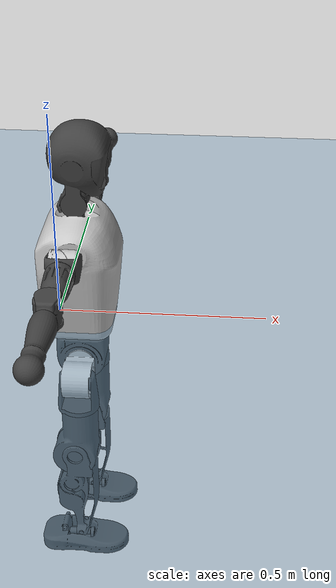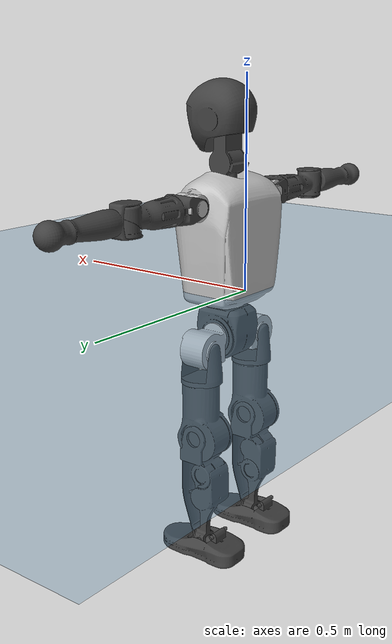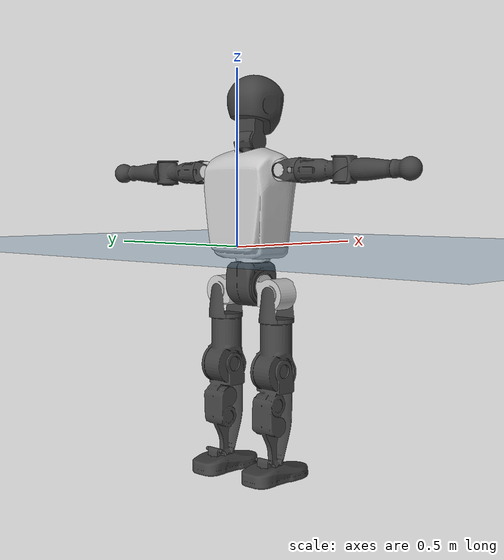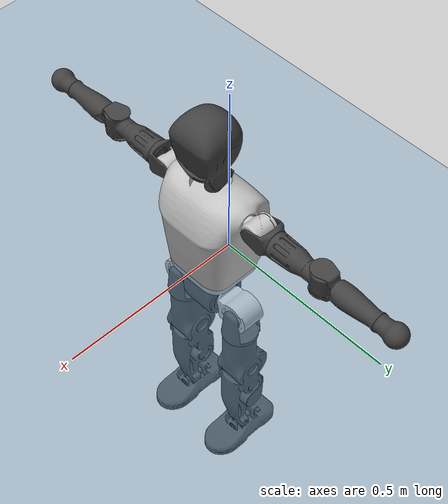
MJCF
<mujoco model="T1">
  <compiler angle="radian" assetdir="assets" balanceinertia="true" inertiafromgeom="false"/>

  <option timestep="0.005" density="1.2" viscosity="2e-05"/>

  <size nkey="1"/>

  <visual>
    <quality shadowsize="8192"/>
    <map shadowclip="0.5"/>
  </visual>

  <default>
    <default class="/">
      <joint armature="0.01" damping="0.01" frictionloss="0.1"/>
      <geom contype="0" conaffinity="0" group="1" solref="-1000 -80"/>
      <site size="0.01 0.005 0.005" group="5"/>
      <general forcelimited="true" biastype="affine" gainprm="25" biasprm="0 -25 -0.6"/>
      <default class="t1">
        <geom rgba="0.25 0.25 0.25 1"/>
        <default class="visual">
          <geom type="mesh" group="2"/>
        </default>
        <default class="collision">
          <geom group="3"/>
        </default>
        <default class="foot">
          <geom size="0.1115 0.05 0.015" type="box" condim="6" group="4" priority="1" solimp="0.015 1 0.015"/>
        </default>
        <default class="reward_collision_sphere">
          <geom group="5" rgba="1 0 0 1"/>
        </default>
      </default>
    </default>
  </default>

  <asset>
    <texture type="skybox" colorspace="auto" name="//unnamed_texture_0" builtin="gradient" rgb1="0.95 0.95 0.95" rgb2="0.95 0.95 0.95" width="100" height="600"/>
    <texture type="2d" colorspace="auto" name="texplane" builtin="checker" rgb1="0.345 0.575 0.748" rgb2="0.345 0.575 0.748" markrgb="1 1 1" width="512" height="512"/>
    <material name="MatPlane" class="/" texture="texplane" texuniform="true" texrepeat="2 2" specular="0.9"/>
    <mesh name="Trunk" class="/" file="Trunk.stl"/>
    <mesh name="H1" class="/" file="H1.stl"/>
    <mesh name="H2" class="/" file="H2.stl"/>
    <mesh name="AL1" class="/" file="AL1.stl"/>
    <mesh name="AL2" class="/" file="AL2.stl"/>
    <mesh name="AL3" class="/" file="AL3.stl"/>
    <mesh name="left_hand_link" class="/" file="left_hand_link.stl"/>
    <mesh name="AR1" class="/" file="AR1.stl"/>
    <mesh name="AR2" class="/" file="AR2.stl"/>
    <mesh name="AR3" class="/" file="AR3.stl"/>
    <mesh name="right_hand_link" class="/" file="right_hand_link.stl"/>
    <mesh name="Waist" class="/" file="Waist.stl"/>
    <mesh name="Hip_Pitch_Left" class="/" file="Hip_Pitch_Left.stl"/>
    <mesh name="Hip_Roll_Left" class="/" file="Hip_Roll_Left.stl"/>
    <mesh name="Hip_Yaw_Left" class="/" file="Hip_Yaw_Left.stl"/>
    <mesh name="Shank_Left" class="/" file="Shank_Left.stl"/>
    <mesh name="Ankle_Cross_Left" class="/" file="Ankle_Cross_Left.stl"/>
    <mesh name="left_foot_link" class="/" file="left_foot_link.stl"/>
    <mesh name="Hip_Pitch_Right" class="/" file="Hip_Pitch_Right.stl"/>
    <mesh name="Hip_Roll_Right" class="/" file="Hip_Roll_Right.stl"/>
    <mesh name="Hip_Yaw_Right" class="/" file="Hip_Yaw_Right.stl"/>
    <mesh name="Shank_Right" class="/" file="Shank_Right.stl"/>
    <mesh name="Ankle_Cross_Right" class="/" file="Ankle_Cross_Right.stl"/>
    <mesh name="right_foot_link" class="/" file="right_foot_link.stl"/>
  </asset>

  <worldbody>
    <geom name="floor" class="/" size="100 100 0.125" type="plane" group="0" material="MatPlane"/>
    <light name="toplight_shadow" class="/" pos="0 0 5" dir="0.0990148 0.0990148 -0.990148" type="directional" ambient="0.04 0.04 0.04" diffuse="0.55 0.55 0.55" specular="0.12 0.12 0.12"/>
    <light name="toplight_fill" class="/" pos="0 0 5" dir="0.0990148 0.0990148 -0.990148" type="directional" castshadow="false" ambient="0.04 0.04 0.04" diffuse="0.3 0.3 0.3" specular="0.08 0.08 0.08"/>
    <body name="trunk" childclass="t1" pos="0.000491303 -6.95263e-05 0.000629106" quat="1 0.000456871 -0.000152163 0.000102756">
      <inertial pos="0.0447137 -0.00197378 0.101485" quat="0.99996 -1.15281e-05 -0.00898122 1.22953e-05" mass="9.01453" diaginertia="0.0350254 0.0585172 0.0481565"/>
      <joint name="//unnamed_joint_0" type="free" armature="0" damping="0" frictionloss="0"/>
      <geom name="//unnamed_geom_1" class="visual" rgba="0.76 0.76 0.76 1" mesh="Trunk"/>
      <geom name="//unnamed_geom_2" class="collision" size="0.0685448 0.0913931 0.13709" pos="0.0493849 0 0.116839" type="box"/>
      <geom name="//unnamed_geom_3" class="reward_collision_sphere" size="0.105102" pos="0.0493849 0 0.0973654"/>
      <geom name="//unnamed_geom_4" class="reward_collision_sphere" size="0.013709" pos="0.0493849 0.0803299 0"/>
      <geom name="//unnamed_geom_5" class="reward_collision_sphere" size="0.013709" pos="0.0493849 -0.0803299 0"/>
      <geom name="//unnamed_geom_6" class="reward_collision_sphere" size="0.013709" pos="0.0493849 0.101121 0.175258"/>
      <geom name="//unnamed_geom_7" class="reward_collision_sphere" size="0.013709" pos="0.0493849 -0.101121 0.175258"/>
      <site name="imu" pos="-0.0116042 0.0120123 -0.0113341" size="0.00913931"/>
      <camera name="track" pos="0 -1.89011 0" quat="0.707107 0.707107 0 0" mode="trackcom"/>
      <camera name="ego_camera" pos="0.100416 0 0.408935" quat="-0.5 -0.5 0.5 0.5"/>
      <body name="H1" pos="0.0509002 0.00047357 0.237235" quat="0.999999 0.000223785 8.35657e-06 -0.00113517">
        <inertial pos="-0.00121824 -0.000887136 0.0548841" quat="0.763837 -0.0127521 0.00156166 0.645281" mass="0.357623" diaginertia="9.18784e-05 0.000170205 0.000134218"/>
        <joint name="AAHead_yaw" pos="0 0 0" axis="0.000389921 0.000144755 1" range="-1.57674 1.56976" armature="0.0103034" damping="0" frictionloss="0.089896"/>
        <geom name="//unnamed_geom_8" class="visual" mesh="H1"/>
        <body name="H2" pos="0.00199317 -0.000524343 0.059985" quat="1 -3.20733e-05 -0.000115705 0.00018282">
          <inertial pos="0.00567533 0.00130208 0.0955201" quat="0.988465 0.106077 -0.0733224 -0.0794246" mass="0.486319" diaginertia="0.000768517 0.00144083 0.00150348"/>
          <joint name="Head_pitch" pos="0 0 0" axis="0.00176921 -0.999988 -0.00461739" range="-1.21365 0.347282" armature="0.00864192" damping="0.00467706" frictionloss="0.0904581"/>
          <geom name="//unnamed_geom_9" class="visual" mesh="H2"/>
          <geom name="//unnamed_geom_10" class="collision" size="0.0731145" pos="0.00823082 0 0.107102"/>
          <geom name="//unnamed_geom_11" class="reward_collision_sphere" size="0.0822538" pos="0.0164616 0 0.0973654"/>
        </body>
      </body>
      <body name="AL1" pos="0.0467858 0.100196 0.212253" quat="0.999999 0.000360354 0.000972479 -0.000246833">
        <inertial pos="-0.000650648 0.0438416 -0.000228053" quat="0.503716 0.496273 -0.503887 0.496066" mass="0.407163" diaginertia="0.000517567 0.000986396 0.000258994"/>
        <joint name="Left_Shoulder_Pitch" pos="0 0 0" axis="0.00199873 0.999996 0.00182375" range="-3.32443 1.21077" armature="0.00961875" damping="0.0113503" frictionloss="0.0897128"/>
        <geom name="//unnamed_geom_12" class="visual" rgba="0.76 0.76 0.76 1" mesh="AL1"/>
        <body name="AL2" pos="0.000818246 0.044272 -1.35753e-05" quat="1 7.21379e-05 7.62847e-05 -9.99848e-05">
          <inertial pos="0.00329209 0.0366228 0.00163916" quat="0.4866 0.512792 -0.487101 0.512833" mass="0.126119" diaginertia="0.000153008 0.000255723 0.000155252"/>
          <joint name="Left_Shoulder_Roll" pos="0 0 0" axis="-1 0.000370461 4.70885e-05" range="-1.52672 1.78569" armature="0.00817763" damping="0.00287979" frictionloss="0.0907229"/>
          <geom name="//unnamed_geom_13" class="visual" mesh="AL2"/>
          <body name="AL3" pos="0.00192805 0.0572043 -0.00114034" quat="1 4.18007e-05 -8.87885e-06 -2.26385e-05">
            <inertial pos="0.000316908 0.0805707 -6.92122e-05" quat="0.706774 0.707436 0.00152536 -0.00163012" mass="0.78828" diaginertia="0.00486985 0.0098306 0.000533445"/>
            <joint name="Left_Elbow_Pitch" pos="0 0 0" axis="-0.00500505 -0.999923 0.0113259" range="-2.22633 2.29787" armature="0.00797306" damping="0.00302233" frictionloss="0.0872193"/>
            <geom name="//unnamed_geom_14" class="visual" mesh="AL3"/>
            <geom name="//unnamed_geom_15" class="collision" size="0.0274179 0.0685448" pos="0 0.0472529 0" quat="0.707105 0.707108 0 0" type="cylinder"/>
            <geom name="//unnamed_geom_16" class="reward_collision_sphere" size="0.0329015"/>
            <body name="left_hand_link" pos="-0.000345996 0.140501 0.00165961" quat="1 0.000316115 -0.000129011 9.66134e-05">
              <inertial pos="-0.000731661 0.103332 8.73524e-05" quat="0.707839 0.706373 -0.000490237 -0.000255766" mass="0.247678" diaginertia="0.00312103 0.00622762 0.000185786"/>
              <joint name="Left_Elbow_Yaw" pos="0 0 0" axis="0.000987861 -0.00222299 0.999997" range="-2.4314 0.0109785" armature="0.0102672" damping="0.0158363" frictionloss="0.0911497"/>
              <geom name="//unnamed_geom_17" class="visual" mesh="left_hand_link"/>
              <geom name="//unnamed_geom_18" class="collision" size="0.0274179 0.079969" pos="0 0.122857 0" quat="0.707105 0.707108 0 0" type="cylinder"/>
              <geom name="//unnamed_geom_19" class="reward_collision_sphere" size="0.0456966"/>
              <geom name="//unnamed_geom_20" class="reward_collision_sphere" size="0.0319876" pos="0 0.103956 0"/>
              <geom name="//unnamed_geom_21" class="reward_collision_sphere" size="0.0319876" pos="0 0.203187 0"/>
            </body>
          </body>
        </body>
      </body>
      <body name="AR1" pos="0.0452316 -0.0992054 0.213333" quat="1 0.000203571 0.000494653 7.15411e-06">
        <inertial pos="-0.00320348 -0.0437079 0.000808538" quat="0.50873 0.492027 -0.511489 0.487321" mass="0.404554" diaginertia="0.000521329 0.000983615 0.000264681"/>
        <joint name="Right_Shoulder_Pitch" pos="0 0 0" axis="0.00401296 -0.999992 -0.00041721" stiffness="0.00522472" range="-1.22526 3.31374" armature="0.00916567" damping="0.00695986" frictionloss="0.0874114"/>
        <geom name="//unnamed_geom_22" class="visual" rgba="0.76 0.76 0.76 1" mesh="AR1"/>
        <body name="AR2" pos="0.000306812 -0.0424246 -0.000200742" quat="1 0.000473899 -0.000161262 0.000432761">
          <inertial pos="0.00195029 -0.0357654 0.000308349" quat="0.511367 0.487649 -0.512361 0.488045" mass="0.121332" diaginertia="0.000152552 0.000266946 0.00015448"/>
          <joint name="Right_Shoulder_Roll" pos="0 0 0" axis="-0.999972 -0.00139539 0.00731091" range="-1.74311 1.61981" armature="0.00864261" damping="0.0100848" frictionloss="0.0906991"/>
          <geom name="//unnamed_geom_23" class="visual" mesh="AR2"/>
          <body name="AR3" pos="-0.000624328 -0.0568295 -0.00121317" quat="1 -6.91956e-06 -5.331e-05 7.45847e-07">
            <inertial pos="-0.000413687 -0.0830185 0.00165629" quat="0.707676 0.706518 0.00166852 0.00485519" mass="0.768393" diaginertia="0.00482118 0.00949691 0.000550946"/>
            <joint name="Right_Elbow_Pitch" pos="0 0 0" axis="-0.000263459 0.999997 0.0023915" range="-2.26685 2.24765" armature="0.00921344" damping="0.0155454" frictionloss="0.090983"/>
            <geom name="//unnamed_geom_24" class="visual" mesh="AR3"/>
            <geom name="//unnamed_geom_25" class="collision" size="0.0274179 0.0685448" pos="0 -0.0472529 0" quat="0.707105 0.707108 0 0" type="cylinder"/>
            <geom name="//unnamed_geom_26" class="reward_collision_sphere" size="0.0329015"/>
            <body name="right_hand_link" pos="-0.000226086 -0.138456 6.97915e-05" quat="1 4.24817e-05 -4.35967e-05 -0.000193175">
              <inertial pos="-0.000913843 -0.102977 -0.000267441" quat="0.705661 0.708546 0.002157 -0.000739976" mass="0.253797" diaginertia="0.00305885 0.00615646 0.000186688"/>
              <joint name="Right_Elbow_Yaw" pos="0 0 0" axis="0.00155624 1.63659e-05 0.999999" range="-0.00120941 2.43618" armature="0.00914073" damping="0.00934116" frictionloss="0.0943954"/>
              <geom name="//unnamed_geom_27" class="visual" mesh="right_hand_link"/>
              <geom name="//unnamed_geom_28" class="collision" size="0.0274179 0.079969" pos="0 -0.122857 0" quat="0.707105 0.707108 0 0" type="cylinder"/>
              <geom name="//unnamed_geom_29" class="reward_collision_sphere" size="0.0456966"/>
              <geom name="//unnamed_geom_30" class="reward_collision_sphere" size="0.0319876" pos="0 -0.103956 0"/>
              <geom name="//unnamed_geom_31" class="reward_collision_sphere" size="0.0319876" pos="0 -0.203187 0"/>
            </body>
          </body>
        </body>
      </body>
      <body name="Waist" pos="0.0533139 -0.00198151 -0.112588" quat="1 0.000322679 0.000297229 -0.000135515">
        <inertial pos="-0.000976543 2.52894e-05 0.00724419" quat="0.983914 0.00165657 -0.178622 0.00208129" mass="2.02144" diaginertia="0.00199036 0.00409315 0.00417998"/>
        <joint name="Waist" pos="0 0 0" axis="0.00648491 0.00878683 0.99994" range="-1.59285 1.5901" armature="0.00936937" damping="0.0253237" frictionloss="0.0927455"/>
        <geom name="//unnamed_geom_32" class="visual" mesh="Waist"/>
        <body name="Hip_Pitch_Left" pos="-0.00157775 0.101064 0.000564672" quat="0.999999 0.000324019 -0.000476705 0.00139913">
          <inertial pos="-0.000336834 -0.00488943 -0.0183393" quat="0.975485 0.219552 0.0148995 0.0021014" mass="0.750753" diaginertia="0.0006608 0.00107884 0.00109482"/>
          <joint name="Left_Hip_Pitch" pos="0 0 0" axis="-0.00673694 0.999977 0.000909185" range="-1.77792 1.57747" armature="0.00849919" damping="0.00847107" frictionloss="0.102503"/>
          <geom name="//unnamed_geom_33" class="visual" rgba="0.76 0.76 0.76 1" mesh="Hip_Pitch_Left"/>
          <body name="Hip_Roll_Left" pos="0.00287209 0.000636069 -0.0223133" quat="1 0.000591128 0.000185445 -0.000773272">
            <inertial pos="0.00169087 0.000646376 -0.0545429" quat="0.706223 -0.00680152 -0.00745069 0.707917" mass="0.288635" diaginertia="0.000653734 0.00113726 0.000445875"/>
            <joint name="Left_Hip_Roll" pos="0 0 0" axis="-0.999995 0.00241556 0.00216588" range="-1.56912 0.204972" armature="0.00948052" damping="0.0175983" frictionloss="0.0913222"/>
            <geom name="//unnamed_geom_34" class="visual" mesh="Hip_Roll_Left"/>
            <geom name="//unnamed_geom_35" class="reward_collision_sphere" size="0.0502662"/>
            <body name="Hip_Yaw_Left" pos="0.000773056 -0.000717446 -0.0800762" quat="1 -2.31636e-05 5.4225e-05 0.000352889">
              <inertial pos="-0.00493673 0.00200276 -0.0847519" quat="0.699157 -0.0356906 -0.0280829 0.713524" mass="1.64495" diaginertia="0.00970529 0.0190412 0.00225816"/>
              <joint name="Left_Hip_Yaw" pos="0 0 0" axis="0.00250581 -0.00654193 -0.999975" range="-1.01672 1.00354" armature="0.00922899" damping="0.0117427" frictionloss="0.0939911"/>
              <geom name="//unnamed_geom_36" class="visual" mesh="Hip_Yaw_Left"/>
              <geom name="//unnamed_geom_37" class="collision" size="0.0456966 0.0731145" type="cylinder"/>
              <body name="Shank_Left" pos="-0.00910035 -0.000618534 -0.130968" quat="1 -0.000301269 -0.000475596 0.000286897">
                <inertial pos="-0.00536995 0.000468749 -0.122004" quat="0.998243 0.000289538 -0.0205677 0.0555634" mass="1.34162" diaginertia="0.0131964 0.0262357 0.00164206"/>
                <joint name="Left_Knee_Pitch" pos="0 0 0" axis="-0.00114629 0.999997 0.00197225" range="0.00101106 2.30396" armature="0.00970665" damping="0.00717199" frictionloss="0.0915267"/>
                <geom name="//unnamed_geom_38" class="visual" mesh="Shank_Left"/>
                <geom name="//unnamed_geom_39" class="collision" size="0.0456966 0.0685448" pos="0 0 -0.116839" type="cylinder"/>
                <geom name="//unnamed_geom_40" class="reward_collision_sphere" size="0.0594055"/>
                <body name="Ankle_Cross_Left" pos="-0.000512982 -0.0014222 -0.272749" quat="1 -3.98105e-05 -0.000126201 0.000203872">
                  <inertial pos="-0.00321263 0.000592306 -0.00885576" quat="0.444287 0.552662 0.546139 0.445988" mass="0.0549282" diaginertia="1.10131e-05 1.90993e-05 9.83023e-06"/>
                  <joint name="Left_Ankle_Pitch" pos="0 0 0" axis="0.00296915 0.999996 0.000186733" stiffness="0.00130878" range="-0.917887 0.39628" armature="0.009227" damping="0" frictionloss="0.0922983"/>
                  <geom name="//unnamed_geom_41" class="visual" mesh="Ankle_Cross_Left"/>
                  <body name="left_foot_link" pos="-0.00103306 0.000472328 -0.0139688" quat="0.999999 0.00107502 0.000619134 0.000144784">
                    <inertial pos="0.000960739 -0.000932584 -0.00833765" quat="0.00434973 0.619446 -0.00513619 0.785011" mass="0.537991" diaginertia="0.00106058 0.00186192 0.00203799"/>
                    <joint name="Left_Ankle_Roll" pos="0 0 0" axis="-0.99999 0.004319 0.00136449" stiffness="0.00357142" range="-0.44334 0.489401" armature="0.00923667" damping="0.0111196" frictionloss="0.103145"/>
                    <geom name="//unnamed_geom_42" class="visual" mesh="left_foot_link"/>
                    <geom name="left_foot" class="foot" size="0.106018 0.0426555 0.0151419" pos="0.00823082 0 -0.0146048"/>
                    <geom name="//unnamed_geom_44" class="reward_collision_sphere" size="0.0475244" pos="0.00823082 0 -0.0146048"/>
                    <geom name="//unnamed_geom_45" class="reward_collision_sphere" size="0.0274179" pos="0.0781928 -0.0217363 -0.0146048"/>
                    <geom name="//unnamed_geom_46" class="reward_collision_sphere" size="0.0274179" pos="-0.0576157 -0.0217363 -0.0146048"/>
                    <site name="left_foot" class="foot" pos="0.00823082 0 -0.0146048" size="0.00913931"/>
                  </body>
                </body>
              </body>
            </body>
          </body>
        </body>
        <body name="Hip_Pitch_Right" pos="0.00011594 -0.100069 -0.00024566" quat="1 -2.87179e-05 5.04994e-05 -2.86955e-05">
          <inertial pos="0.00142671 0.00693223 -0.0169044" quat="0.97151 -0.235723 0.0243364 -0.00326541" mass="0.763175" diaginertia="0.000659812 0.00106453 0.00107231"/>
          <joint name="Right_Hip_Pitch" pos="0 0 0" axis="-0.000997494 -0.999999 -0.0012473" stiffness="0.00278701" range="-1.56078 1.79859" armature="0.00881721" damping="0.00782857" frictionloss="0.0898497"/>
          <geom name="//unnamed_geom_47" class="visual" rgba="0.76 0.76 0.76 1" mesh="Hip_Pitch_Right"/>
          <body name="Hip_Roll_Right" pos="0.000997985 0.000340301 -0.0215794" quat="1 7.44053e-05 -5.298e-05 -0.000219605">
            <inertial pos="0.000861271 -0.000242777 -0.0521949" quat="0.706039 -0.00149346 -0.00266975 0.708166" mass="0.285623" diaginertia="0.000654614 0.00113902 0.000434926"/>
            <joint name="Right_Hip_Roll" pos="0 0 0" axis="-0.999998 -0.000837578 0.00207257" range="-0.192412 1.57384" armature="0.00913623" damping="0.00778977" frictionloss="0.0900372"/>
            <geom name="//unnamed_geom_48" class="visual" mesh="Hip_Roll_Right"/>
            <geom name="//unnamed_geom_49" class="reward_collision_sphere" size="0.0502662"/>
            <body name="Hip_Yaw_Right" pos="-0.00147474 0.00212091 -0.0803106" quat="1 -4.32782e-05 -8.78323e-06 -0.000175051">
              <inertial pos="-0.00673899 -0.000465917 -0.089456" quat="0.715692 -0.0299712 -0.0408781 0.696575" mass="1.68106" diaginertia="0.00969812 0.0190237 0.00226071"/>
              <joint name="Right_Hip_Yaw" pos="0 0 0" axis="-0.000305972 -0.000419898 -1" range="-0.966279 1.00023" armature="0.00933516" damping="0.0118751" frictionloss="0.0916265"/>
              <geom name="//unnamed_geom_50" class="visual" mesh="Hip_Yaw_Right"/>
              <geom name="//unnamed_geom_51" class="collision" size="0.0456966 0.0731145" type="cylinder"/>
              <body name="Shank_Right" pos="-0.0116106 0.000654476 -0.129707" quat="1 0.000131929 -0.000109594 0.000136674">
                <inertial pos="-0.00239464 -0.00123238 -0.118755" quat="0.999429 0.00605276 -0.0206742 -0.0260306" mass="1.32348" diaginertia="0.0129951 0.0264139 0.00168168"/>
                <joint name="Right_Knee_Pitch" pos="0 0 0" axis="-0.00229936 -0.999992 -0.00331881" range="-2.34429 -0.00675788" armature="0.00930763" damping="0" frictionloss="0.0976605"/>
                <geom name="//unnamed_geom_52" class="visual" mesh="Shank_Right"/>
                <geom name="//unnamed_geom_53" class="collision" size="0.0456966 0.0685448" pos="0 0 -0.116839" type="cylinder"/>
                <geom name="//unnamed_geom_54" class="reward_collision_sphere" size="0.0594055"/>
                <body name="Ankle_Cross_Right" pos="0.00119984 -0.00325401 -0.272834" quat="0.999999 0.000215732 0.00119471 0.000110971">
                  <inertial pos="-0.00226707 0.000527614 -0.00773946" quat="0.442897 0.551163 0.551104 0.44311" mass="0.0561068" diaginertia="1.0708e-05 1.94131e-05 1.00842e-05"/>
                  <joint name="Right_Ankle_Pitch" pos="0 0 0" axis="-0.00315071 -0.999979 -0.00572282" range="-0.342155 0.918056" armature="0.00888527" damping="0.0145043" frictionloss="0.0908902"/>
                  <geom name="//unnamed_geom_55" class="visual" mesh="Ankle_Cross_Right"/>
                  <body name="right_foot_link" pos="0.000221952 -0.000976179 -0.011946" quat="1 -9.51153e-05 -0.000719531 -0.000141774">
                    <inertial pos="-0.00133815 2.11656e-05 -0.00887774" quat="0.0015683 0.618454 0.00403894 0.785809" mass="0.522891" diaginertia="0.00099004 0.00178353 0.00193937"/>
                    <joint name="Right_Ankle_Roll" pos="0 0 0" axis="-0.999992 -0.00302965 -0.00257219" range="-0.438119 0.447213" armature="0.00868956" damping="0.00676275" frictionloss="0.0876725"/>
                    <geom name="//unnamed_geom_56" class="visual" mesh="right_foot_link"/>
                    <geom name="right_foot" class="foot" size="0.102268 0.0437544 0.0138662" pos="0.00823082 0 -0.0146048"/>
                    <geom name="//unnamed_geom_58" class="reward_collision_sphere" size="0.0365572"/>
                    <geom name="//unnamed_geom_59" class="reward_collision_sphere" size="0.0274179" pos="0.00823082 0 -0.0146048"/>
                    <geom name="//unnamed_geom_60" class="reward_collision_sphere" size="0.0274179" pos="0.0781928 0.0217363 -0.0146048"/>
                    <geom name="//unnamed_geom_61" class="reward_collision_sphere" size="0.0274179" pos="-0.0576157 0.0217363 -0.0146048"/>
                    <site name="right_foot" class="foot" pos="0.00823082 0 -0.0146048" size="0.00913931"/>
                  </body>
                </body>
              </body>
            </body>
          </body>
        </body>
      </body>
    </body>
  </worldbody>

  <contact>
    <pair class="/" geom1="floor" geom2="left_foot" name="//unnamed_contact_0"/>
    <pair class="/" geom1="floor" geom2="right_foot" name="//unnamed_contact_1"/>
  </contact>

  <actuator>
    <general name="AAHead_yaw" class="/" joint="AAHead_yaw" forcerange="-6.65062 6.65062" gainprm="21.4275" biasprm="0 -21.4275 -0.54516"/>
    <general name="Head_pitch" class="/" joint="Head_pitch" forcerange="-6.17823 6.17823" gainprm="21.4275" biasprm="0 -21.4275 -0.54516"/>
    <general name="Left_Shoulder_Pitch" class="/" joint="Left_Shoulder_Pitch" forcerange="-16.528 16.528" gainprm="21.4275" biasprm="0 -21.4275 -0.54516"/>
    <general name="Left_Shoulder_Roll" class="/" joint="Left_Shoulder_Roll" forcerange="-16.4551 16.4551" gainprm="21.4275" biasprm="0 -21.4275 -0.54516"/>
    <general name="Left_Elbow_Pitch" class="/" joint="Left_Elbow_Pitch" forcerange="-14.9981 14.9981" gainprm="21.4275" biasprm="0 -21.4275 -0.54516"/>
    <general name="Left_Elbow_Yaw" class="/" joint="Left_Elbow_Yaw" forcerange="-17.8195 17.8195" gainprm="21.4275" biasprm="0 -21.4275 -0.54516"/>
    <general name="Right_Shoulder_Pitch" class="/" joint="Right_Shoulder_Pitch" forcerange="-17.914 17.914" gainprm="21.4275" biasprm="0 -21.4275 -0.54516"/>
    <general name="Right_Shoulder_Roll" class="/" joint="Right_Shoulder_Roll" forcerange="-16.9805 16.9805" gainprm="21.4275" biasprm="0 -21.4275 -0.54516"/>
    <general name="Right_Elbow_Pitch" class="/" joint="Right_Elbow_Pitch" forcerange="-16.444 16.444" gainprm="21.4275" biasprm="0 -21.4275 -0.54516"/>
    <general name="Right_Elbow_Yaw" class="/" joint="Right_Elbow_Yaw" forcerange="-16.3282 16.3282" gainprm="21.4275" biasprm="0 -21.4275 -0.54516"/>
    <general name="Waist" class="/" joint="Waist" forcerange="-27.059 27.059" gainprm="21.4275" biasprm="0 -21.4275 -0.54516"/>
    <general name="Left_Hip_Pitch" class="/" joint="Left_Hip_Pitch" forcerange="-42.4136 42.4136" gainprm="21.4275" biasprm="0 -21.4275 -0.54516"/>
    <general name="Left_Hip_Roll" class="/" joint="Left_Hip_Roll" forcerange="-29.668 29.668" gainprm="21.4275" biasprm="0 -21.4275 -0.54516"/>
    <general name="Left_Hip_Yaw" class="/" joint="Left_Hip_Yaw" forcerange="-24.9421 24.9421" gainprm="21.4275" biasprm="0 -21.4275 -0.54516"/>
    <general name="Left_Knee_Pitch" class="/" joint="Left_Knee_Pitch" forcerange="-49.5204 49.5204" gainprm="21.4275" biasprm="0 -21.4275 -0.54516"/>
    <general name="Left_Ankle_Pitch" class="/" joint="Left_Ankle_Pitch" forcerange="-18.0501 18.0501" gainprm="21.4275" biasprm="0 -21.4275 -0.54516"/>
    <general name="Left_Ankle_Roll" class="/" joint="Left_Ankle_Roll" forcerange="-13.7522 13.7522" gainprm="21.4275" biasprm="0 -21.4275 -0.54516"/>
    <general name="Right_Hip_Pitch" class="/" joint="Right_Hip_Pitch" forcerange="-39.5595 39.5595" gainprm="21.4275" biasprm="0 -21.4275 -0.54516"/>
    <general name="Right_Hip_Roll" class="/" joint="Right_Hip_Roll" forcerange="-27.6696 27.6696" gainprm="21.4275" biasprm="0 -21.4275 -0.54516"/>
    <general name="Right_Hip_Yaw" class="/" joint="Right_Hip_Yaw" forcerange="-27.2145 27.2145" gainprm="21.4275" biasprm="0 -21.4275 -0.54516"/>
    <general name="Right_Knee_Pitch" class="/" joint="Right_Knee_Pitch" forcerange="-54.2443 54.2443" gainprm="21.4275" biasprm="0 -21.4275 -0.54516"/>
    <general name="Right_Ankle_Pitch" class="/" joint="Right_Ankle_Pitch" forcerange="-17.0321 17.0321" gainprm="21.4275" biasprm="0 -21.4275 -0.54516"/>
    <general name="Right_Ankle_Roll" class="/" joint="Right_Ankle_Roll" forcerange="-13.6692 13.6692" gainprm="21.4275" biasprm="0 -21.4275 -0.54516"/>
  </actuator>

  <sensor>
    <gyro site="imu" name="imu_angular_velocity"/>
    <velocimeter site="imu" name="imu_linear_velocity"/>
    <framelinvel objtype="site" objname="left_foot" name="left_foot_global_linear_velocity"/>
    <framelinvel objtype="site" objname="right_foot" name="right_foot_global_linear_velocity"/>
  </sensor>

  <keyframe>
    <key name="home" qpos="0 0 0.6385 1 0 0 0 0 0 0 1.4 0 -0.4 0 -1.4 0 0.4 0 -0.4 0 0 0.8 -0.4 0 0.4 0 0 -0.8 0.4 0"/>
  </keyframe>
</mujoco>
